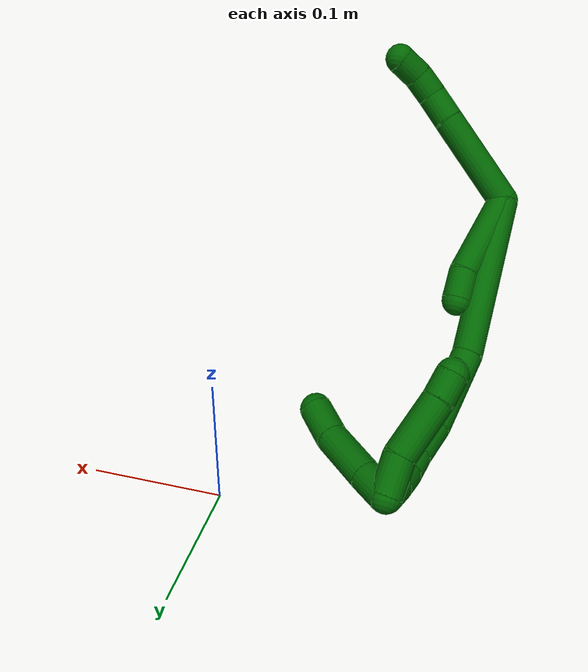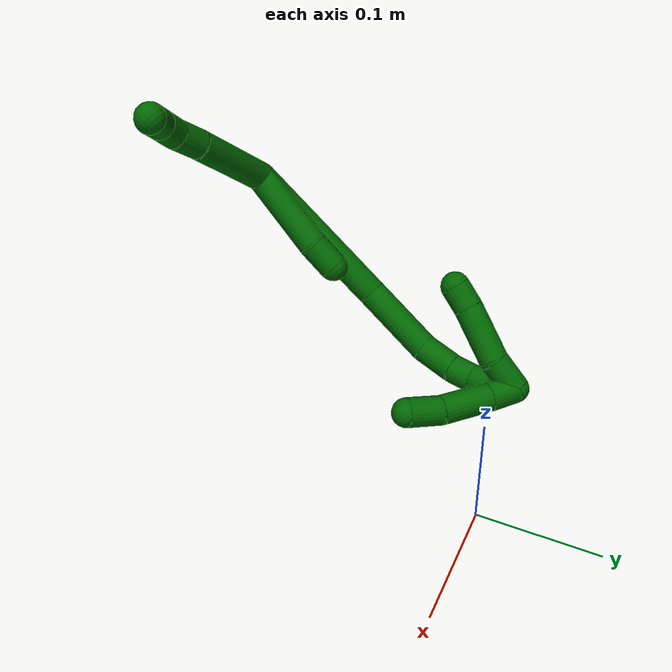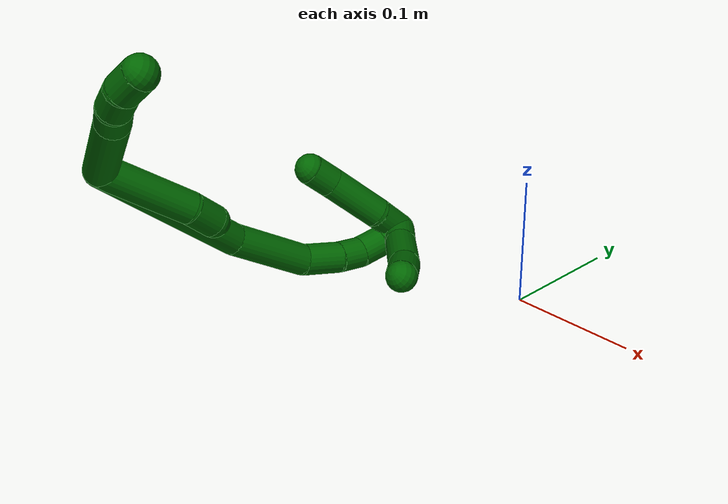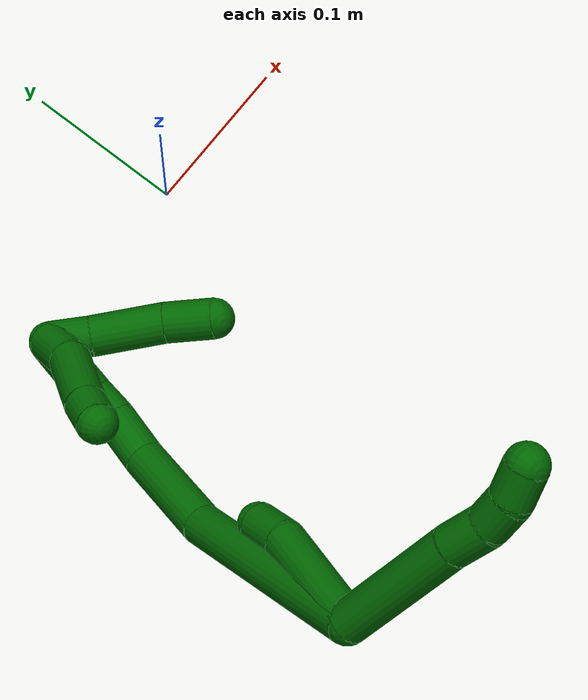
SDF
<sdf version="1.7">
 <world name="default">
  <model name="6">
   <static>0</static>
   <link name="6">
    <collision name="collision-cylinder-e_1_2_8">
     <pose>0.033125 0.000984 0.024829 -0.039609 0.927208 -0.019805</pose>
     <geometry><cylinder><radius>0.0125</radius><length>0.082819</length></cylinder></geometry>
     <surface>
      <friction><ode><mu>1.16</mu><mu2>1.16</mu2><slip1>0</slip1><slip2>0</slip2></ode></friction>
      <contact><ode><kp>1e+06</kp><kd>1</kd><max_vel>0</max_vel><min_depth>0.001</min_depth></ode></contact>
     </surface>
    </collision>
    <visual name="visual-cylinder-e_1_2_8">
     <pose>0.033125 0.000984 0.024829 -0.039609 0.927208 -0.019805</pose>
     <geometry><cylinder><radius>0.0125</radius><length>0.082819</length></cylinder></geometry>
     <material><ambient>0 0.392157 0.003922 1</ambient></material>
    </visual>
    <collision name="collision-cylinder-e_2_8_9">
     <pose>0.075861 0.001257 0.057717 0.088036 0.871081 0.040988</pose>
     <geometry><cylinder><radius>0.0125</radius><length>0.025124</length></cylinder></geometry>
     <surface>
      <friction><ode><mu>1.16</mu><mu2>1.16</mu2><slip1>0</slip1><slip2>0</slip2></ode></friction>
      <contact><ode><kp>1e+06</kp><kd>1</kd><max_vel>0</max_vel><min_depth>0.001</min_depth></ode></contact>
     </surface>
    </collision>
    <visual name="visual-cylinder-e_2_8_9">
     <pose>0.075861 0.001257 0.057717 0.088036 0.871081 0.040988</pose>
     <geometry><cylinder><radius>0.0125</radius><length>0.025124</length></cylinder></geometry>
     <material><ambient>0 0.392157 0.003922 1</ambient></material>
    </visual>
    <collision name="collision-cylinder-e_3_9_10">
     <pose>0.094371 0.002071 0.071065 -0.280764 1.01684 -0.157177</pose>
     <geometry><cylinder><radius>0.0125</radius><length>0.02093</length></cylinder></geometry>
     <surface>
      <friction><ode><mu>1.16</mu><mu2>1.16</mu2><slip1>0</slip1><slip2>0</slip2></ode></friction>
      <contact><ode><kp>1e+06</kp><kd>1</kd><max_vel>0</max_vel><min_depth>0.001</min_depth></ode></contact>
     </surface>
    </collision>
    <visual name="visual-cylinder-e_3_9_10">
     <pose>0.094371 0.002071 0.071065 -0.280764 1.01684 -0.157177</pose>
     <geometry><cylinder><radius>0.0125</radius><length>0.02093</length></cylinder></geometry>
     <material><ambient>0 0.392157 0.003922 1</ambient></material>
    </visual>
    <collision name="collision-cylinder-e_4_10_6">
     <pose>0.113161 0.006196 0.079003 -0.776108 1.21184 -0.552001</pose>
     <geometry><cylinder><radius>0.0125</radius><length>0.021127</length></cylinder></geometry>
     <surface>
      <friction><ode><mu>1.16</mu><mu2>1.16</mu2><slip1>0</slip1><slip2>0</slip2></ode></friction>
      <contact><ode><kp>1e+06</kp><kd>1</kd><max_vel>0</max_vel><min_depth>0.001</min_depth></ode></contact>
     </surface>
    </collision>
    <visual name="visual-cylinder-e_4_10_6">
     <pose>0.113161 0.006196 0.079003 -0.776108 1.21184 -0.552001</pose>
     <geometry><cylinder><radius>0.0125</radius><length>0.021127</length></cylinder></geometry>
     <material><ambient>0 0.392157 0.003922 1</ambient></material>
    </visual>
    <collision name="collision-cylinder-e_1_2_11">
     <pose>0.008241 0.000105 -0.036446 -3.13871 0.222385 -3.11578</pose>
     <geometry><cylinder><radius>0.0125</radius><length>0.074732</length></cylinder></geometry>
     <surface>
      <friction><ode><mu>1.16</mu><mu2>1.16</mu2><slip1>0</slip1><slip2>0</slip2></ode></friction>
      <contact><ode><kp>1e+06</kp><kd>1</kd><max_vel>0</max_vel><min_depth>0.001</min_depth></ode></contact>
     </surface>
    </collision>
    <visual name="visual-cylinder-e_1_2_11">
     <pose>0.008241 0.000105 -0.036446 -3.13871 0.222385 -3.11578</pose>
     <geometry><cylinder><radius>0.0125</radius><length>0.074732</length></cylinder></geometry>
     <material><ambient>0 0.392157 0.003922 1</ambient></material>
    </visual>
    <collision name="collision-cylinder-e_2_11_5">
     <pose>0.016231 0.000327 -0.085522 -3.13232 -0.019945 2.27138</pose>
     <geometry><cylinder><radius>0.0125</radius><length>0.025268</length></cylinder></geometry>
     <surface>
      <friction><ode><mu>1.16</mu><mu2>1.16</mu2><slip1>0</slip1><slip2>0</slip2></ode></friction>
      <contact><ode><kp>1e+06</kp><kd>1</kd><max_vel>0</max_vel><min_depth>0.001</min_depth></ode></contact>
     </surface>
    </collision>
    <visual name="visual-cylinder-e_2_11_5">
     <pose>0.016231 0.000327 -0.085522 -3.13232 -0.019945 2.27138</pose>
     <geometry><cylinder><radius>0.0125</radius><length>0.025268</length></cylinder></geometry>
     <material><ambient>0 0.392157 0.003922 1</ambient></material>
    </visual>
    <collision name="collision-cylinder-e_1_2_12">
     <pose>-0.001508 0.002293 -0.069621 -3.10866 -0.021642 1.16281</pose>
     <geometry><cylinder><radius>0.0125</radius><length>0.139349</length></cylinder></geometry>
     <surface>
      <friction><ode><mu>1.16</mu><mu2>1.16</mu2><slip1>0</slip1><slip2>0</slip2></ode></friction>
      <contact><ode><kp>1e+06</kp><kd>1</kd><max_vel>0</max_vel><min_depth>0.001</min_depth></ode></contact>
     </surface>
    </collision>
    <visual name="visual-cylinder-e_1_2_12">
     <pose>-0.001508 0.002293 -0.069621 -3.10866 -0.021642 1.16281</pose>
     <geometry><cylinder><radius>0.0125</radius><length>0.139349</length></cylinder></geometry>
     <material><ambient>0 0.392157 0.003922 1</ambient></material>
    </visual>
    <collision name="collision-cylinder-e_2_12_13">
     <pose>0.003624 0.008047 -0.17209 -3.03664 0.198377 -2.17033</pose>
     <geometry><cylinder><radius>0.0125</radius><length>0.067382</length></cylinder></geometry>
     <surface>
      <friction><ode><mu>1.16</mu><mu2>1.16</mu2><slip1>0</slip1><slip2>0</slip2></ode></friction>
      <contact><ode><kp>1e+06</kp><kd>1</kd><max_vel>0</max_vel><min_depth>0.001</min_depth></ode></contact>
     </surface>
    </collision>
    <visual name="visual-cylinder-e_2_12_13">
     <pose>0.003624 0.008047 -0.17209 -3.03664 0.198377 -2.17033</pose>
     <geometry><cylinder><radius>0.0125</radius><length>0.067382</length></cylinder></geometry>
     <material><ambient>0 0.392157 0.003922 1</ambient></material>
    </visual>
    <collision name="collision-cylinder-e_3_13_14">
     <pose>0.016553 0.017188 -0.218523 -2.74552 0.403668 -1.59029</pose>
     <geometry><cylinder><radius>0.0125</radius><length>0.032024</length></cylinder></geometry>
     <surface>
      <friction><ode><mu>1.16</mu><mu2>1.16</mu2><slip1>0</slip1><slip2>0</slip2></ode></friction>
      <contact><ode><kp>1e+06</kp><kd>1</kd><max_vel>0</max_vel><min_depth>0.001</min_depth></ode></contact>
     </surface>
    </collision>
    <visual name="visual-cylinder-e_3_13_14">
     <pose>0.016553 0.017188 -0.218523 -2.74552 0.403668 -1.59029</pose>
     <geometry><cylinder><radius>0.0125</radius><length>0.032024</length></cylinder></geometry>
     <material><ambient>0 0.392157 0.003922 1</ambient></material>
    </visual>
    <collision name="collision-cylinder-e_4_14_15">
     <pose>0.026317 0.027879 -0.240385 -2.59725 0.34474 -1.11545</pose>
     <geometry><cylinder><radius>0.0125</radius><length>0.020559</length></cylinder></geometry>
     <surface>
      <friction><ode><mu>1.16</mu><mu2>1.16</mu2><slip1>0</slip1><slip2>0</slip2></ode></friction>
      <contact><ode><kp>1e+06</kp><kd>1</kd><max_vel>0</max_vel><min_depth>0.001</min_depth></ode></contact>
     </surface>
    </collision>
    <visual name="visual-cylinder-e_4_14_15">
     <pose>0.026317 0.027879 -0.240385 -2.59725 0.34474 -1.11545</pose>
     <geometry><cylinder><radius>0.0125</radius><length>0.020559</length></cylinder></geometry>
     <material><ambient>0 0.392157 0.003922 1</ambient></material>
    </visual>
    <collision name="collision-cylinder-e_5_15_16">
     <pose>0.034282 0.039615 -0.25499 -2.32582 0.452649 -0.979214</pose>
     <geometry><cylinder><radius>0.0125</radius><length>0.02054</length></cylinder></geometry>
     <surface>
      <friction><ode><mu>1.16</mu><mu2>1.16</mu2><slip1>0</slip1><slip2>0</slip2></ode></friction>
      <contact><ode><kp>1e+06</kp><kd>1</kd><max_vel>0</max_vel><min_depth>0.001</min_depth></ode></contact>
     </surface>
    </collision>
    <visual name="visual-cylinder-e_5_15_16">
     <pose>0.034282 0.039615 -0.25499 -2.32582 0.452649 -0.979214</pose>
     <geometry><cylinder><radius>0.0125</radius><length>0.02054</length></cylinder></geometry>
     <material><ambient>0 0.392157 0.003922 1</ambient></material>
    </visual>
    <collision name="collision-cylinder-e_6_16_1">
     <pose>0.043481 0.053511 -0.266601 -2.20571 0.486233 -0.91247</pose>
     <geometry><cylinder><radius>0.0125</radius><length>0.020146</length></cylinder></geometry>
     <surface>
      <friction><ode><mu>1.16</mu><mu2>1.16</mu2><slip1>0</slip1><slip2>0</slip2></ode></friction>
      <contact><ode><kp>1e+06</kp><kd>1</kd><max_vel>0</max_vel><min_depth>0.001</min_depth></ode></contact>
     </surface>
    </collision>
    <visual name="visual-cylinder-e_6_16_1">
     <pose>0.043481 0.053511 -0.266601 -2.20571 0.486233 -0.91247</pose>
     <geometry><cylinder><radius>0.0125</radius><length>0.020146</length></cylinder></geometry>
     <material><ambient>0 0.392157 0.003922 1</ambient></material>
    </visual>
    <collision name="collision-cylinder-e_1_1_17">
     <pose>0.054577 0.051442 -0.26636 1.03194 0.535676 0.308849</pose>
     <geometry><cylinder><radius>0.0125</radius><length>0.025036</length></cylinder></geometry>
     <surface>
      <friction><ode><mu>1.16</mu><mu2>1.16</mu2><slip1>0</slip1><slip2>0</slip2></ode></friction>
      <contact><ode><kp>1e+06</kp><kd>1</kd><max_vel>0</max_vel><min_depth>0.001</min_depth></ode></contact>
     </surface>
    </collision>
    <visual name="visual-cylinder-e_1_1_17">
     <pose>0.054577 0.051442 -0.26636 1.03194 0.535676 0.308849</pose>
     <geometry><cylinder><radius>0.0125</radius><length>0.025036</length></cylinder></geometry>
     <material><ambient>0 0.392157 0.003922 1</ambient></material>
    </visual>
    <collision name="collision-cylinder-e_2_17_18">
     <pose>0.073487 0.027155 -0.249792 0.937692 0.590809 0.305866</pose>
     <geometry><cylinder><radius>0.0125</radius><length>0.044952</length></cylinder></geometry>
     <surface>
      <friction><ode><mu>1.16</mu><mu2>1.16</mu2><slip1>0</slip1><slip2>0</slip2></ode></friction>
      <contact><ode><kp>1e+06</kp><kd>1</kd><max_vel>0</max_vel><min_depth>0.001</min_depth></ode></contact>
     </surface>
    </collision>
    <visual name="visual-cylinder-e_2_17_18">
     <pose>0.073487 0.027155 -0.249792 0.937692 0.590809 0.305866</pose>
     <geometry><cylinder><radius>0.0125</radius><length>0.044952</length></cylinder></geometry>
     <material><ambient>0 0.392157 0.003922 1</ambient></material>
    </visual>
    <collision name="collision-cylinder-e_3_18_4">
     <pose>0.093267 0.003179 -0.229116 0.74746 0.505023 0.201683</pose>
     <geometry><cylinder><radius>0.0125</radius><length>0.030013</length></cylinder></geometry>
     <surface>
      <friction><ode><mu>1.16</mu><mu2>1.16</mu2><slip1>0</slip1><slip2>0</slip2></ode></friction>
      <contact><ode><kp>1e+06</kp><kd>1</kd><max_vel>0</max_vel><min_depth>0.001</min_depth></ode></contact>
     </surface>
    </collision>
    <visual name="visual-cylinder-e_3_18_4">
     <pose>0.093267 0.003179 -0.229116 0.74746 0.505023 0.201683</pose>
     <geometry><cylinder><radius>0.0125</radius><length>0.030013</length></cylinder></geometry>
     <material><ambient>0 0.392157 0.003922 1</ambient></material>
    </visual>
    <collision name="collision-cylinder-e_1_1_19">
     <pose>0.04767 0.061758 -0.256982 -0.072138 -0.03468 0.001252</pose>
     <geometry><cylinder><radius>0.0125</radius><length>0.029899</length></cylinder></geometry>
     <surface>
      <friction><ode><mu>1.16</mu><mu2>1.16</mu2><slip1>0</slip1><slip2>0</slip2></ode></friction>
      <contact><ode><kp>1e+06</kp><kd>1</kd><max_vel>0</max_vel><min_depth>0.001</min_depth></ode></contact>
     </surface>
    </collision>
    <visual name="visual-cylinder-e_1_1_19">
     <pose>0.04767 0.061758 -0.256982 -0.072138 -0.03468 0.001252</pose>
     <geometry><cylinder><radius>0.0125</radius><length>0.029899</length></cylinder></geometry>
     <material><ambient>0 0.392157 0.003922 1</ambient></material>
    </visual>
    <collision name="collision-cylinder-e_2_19_20">
     <pose>0.040326 0.067488 -0.219246 -0.201058 -0.284942 0.028936</pose>
     <geometry><cylinder><radius>0.0125</radius><length>0.048564</length></cylinder></geometry>
     <surface>
      <friction><ode><mu>1.16</mu><mu2>1.16</mu2><slip1>0</slip1><slip2>0</slip2></ode></friction>
      <contact><ode><kp>1e+06</kp><kd>1</kd><max_vel>0</max_vel><min_depth>0.001</min_depth></ode></contact>
     </surface>
    </collision>
    <visual name="visual-cylinder-e_2_19_20">
     <pose>0.040326 0.067488 -0.219246 -0.201058 -0.284942 0.028936</pose>
     <geometry><cylinder><radius>0.0125</radius><length>0.048564</length></cylinder></geometry>
     <material><ambient>0 0.392157 0.003922 1</ambient></material>
    </visual>
    <collision name="collision-cylinder-e_3_20_3">
     <pose>0.031364 0.073413 -0.185935 -0.120679 -0.19966 0.012102</pose>
     <geometry><cylinder><radius>0.0125</radius><length>0.021537</length></cylinder></geometry>
     <surface>
      <friction><ode><mu>1.16</mu><mu2>1.16</mu2><slip1>0</slip1><slip2>0</slip2></ode></friction>
      <contact><ode><kp>1e+06</kp><kd>1</kd><max_vel>0</max_vel><min_depth>0.001</min_depth></ode></contact>
     </surface>
    </collision>
    <visual name="visual-cylinder-e_3_20_3">
     <pose>0.031364 0.073413 -0.185935 -0.120679 -0.19966 0.012102</pose>
     <geometry><cylinder><radius>0.0125</radius><length>0.021537</length></cylinder></geometry>
     <material><ambient>0 0.392157 0.003922 1</ambient></material>
    </visual>
    <collision name="collision-sphere-3">
     <pose>0.029228 0.074683 -0.175458 0 -0 0</pose>
     <geometry><sphere><radius>0.0125</radius></sphere></geometry>
     <surface>
      <friction><ode><mu>1.16</mu><mu2>1.16</mu2><slip1>0</slip1><slip2>0</slip2></ode></friction>
      <contact><ode><kp>1e+06</kp><kd>1</kd><max_vel>0</max_vel><min_depth>0.001</min_depth></ode></contact>
     </surface>
    </collision>
    <visual name="visual-sphere-3">
     <pose>0.029228 0.074683 -0.175458 0 -0 0</pose>
     <geometry><sphere><radius>0.0125</radius></sphere></geometry>
     <material><ambient>0 0.392157 0.003922 1</ambient></material>
    </visual>
    <collision name="collision-sphere-20">
     <pose>0.0335 0.072142 -0.196413 0 -0 0</pose>
     <geometry><sphere><radius>0.0125</radius></sphere></geometry>
     <surface>
      <friction><ode><mu>1.16</mu><mu2>1.16</mu2><slip1>0</slip1><slip2>0</slip2></ode></friction>
      <contact><ode><kp>1e+06</kp><kd>1</kd><max_vel>0</max_vel><min_depth>0.001</min_depth></ode></contact>
     </surface>
    </collision>
    <visual name="visual-sphere-20">
     <pose>0.0335 0.072142 -0.196413 0 -0 0</pose>
     <geometry><sphere><radius>0.0125</radius></sphere></geometry>
     <material><ambient>0 0.392157 0.003922 1</ambient></material>
    </visual>
    <collision name="collision-sphere-19">
     <pose>0.047151 0.062835 -0.24208 0 -0 0</pose>
     <geometry><sphere><radius>0.0125</radius></sphere></geometry>
     <surface>
      <friction><ode><mu>1.16</mu><mu2>1.16</mu2><slip1>0</slip1><slip2>0</slip2></ode></friction>
      <contact><ode><kp>1e+06</kp><kd>1</kd><max_vel>0</max_vel><min_depth>0.001</min_depth></ode></contact>
     </surface>
    </collision>
    <visual name="visual-sphere-19">
     <pose>0.047151 0.062835 -0.24208 0 -0 0</pose>
     <geometry><sphere><radius>0.0125</radius></sphere></geometry>
     <material><ambient>0 0.392157 0.003922 1</ambient></material>
    </visual>
    <collision name="collision-sphere-11">
     <pose>0.016483 0.00021 -0.072891 0 -0 0</pose>
     <geometry><sphere><radius>0.0125</radius></sphere></geometry>
     <surface>
      <friction><ode><mu>1.16</mu><mu2>1.16</mu2><slip1>0</slip1><slip2>0</slip2></ode></friction>
      <contact><ode><kp>1e+06</kp><kd>1</kd><max_vel>0</max_vel><min_depth>0.001</min_depth></ode></contact>
     </surface>
    </collision>
    <visual name="visual-sphere-11">
     <pose>0.016483 0.00021 -0.072891 0 -0 0</pose>
     <geometry><sphere><radius>0.0125</radius></sphere></geometry>
     <material><ambient>0 0.392157 0.003922 1</ambient></material>
    </visual>
    <collision name="collision-sphere-6">
     <pose>0.123052 0.008795 0.081651 0 -0 0</pose>
     <geometry><sphere><radius>0.0125</radius></sphere></geometry>
     <surface>
      <friction><ode><mu>1.16</mu><mu2>1.16</mu2><slip1>0</slip1><slip2>0</slip2></ode></friction>
      <contact><ode><kp>1e+06</kp><kd>1</kd><max_vel>0</max_vel><min_depth>0.001</min_depth></ode></contact>
     </surface>
    </collision>
    <visual name="visual-sphere-6">
     <pose>0.123052 0.008795 0.081651 0 -0 0</pose>
     <geometry><sphere><radius>0.0125</radius></sphere></geometry>
     <material><ambient>0 0.392157 0.003922 1</ambient></material>
    </visual>
    <collision name="collision-sphere-10">
     <pose>0.103271 0.003596 0.076355 0 -0 0</pose>
     <geometry><sphere><radius>0.0125</radius></sphere></geometry>
     <surface>
      <friction><ode><mu>1.16</mu><mu2>1.16</mu2><slip1>0</slip1><slip2>0</slip2></ode></friction>
      <contact><ode><kp>1e+06</kp><kd>1</kd><max_vel>0</max_vel><min_depth>0.001</min_depth></ode></contact>
     </surface>
    </collision>
    <visual name="visual-sphere-10">
     <pose>0.103271 0.003596 0.076355 0 -0 0</pose>
     <geometry><sphere><radius>0.0125</radius></sphere></geometry>
     <material><ambient>0 0.392157 0.003922 1</ambient></material>
    </visual>
    <collision name="collision-sphere-9">
     <pose>0.085472 0.000545 0.065776 0 -0 0</pose>
     <geometry><sphere><radius>0.0125</radius></sphere></geometry>
     <surface>
      <friction><ode><mu>1.16</mu><mu2>1.16</mu2><slip1>0</slip1><slip2>0</slip2></ode></friction>
      <contact><ode><kp>1e+06</kp><kd>1</kd><max_vel>0</max_vel><min_depth>0.001</min_depth></ode></contact>
     </surface>
    </collision>
    <visual name="visual-sphere-9">
     <pose>0.085472 0.000545 0.065776 0 -0 0</pose>
     <geometry><sphere><radius>0.0125</radius></sphere></geometry>
     <material><ambient>0 0.392157 0.003922 1</ambient></material>
    </visual>
    <collision name="collision-sphere-2">
     <geometry><sphere><radius>0.0125</radius></sphere></geometry>
     <surface>
      <friction><ode><mu>1.16</mu><mu2>1.16</mu2><slip1>0</slip1><slip2>0</slip2></ode></friction>
      <contact><ode><kp>1e+06</kp><kd>1</kd><max_vel>0</max_vel><min_depth>0.001</min_depth></ode></contact>
     </surface>
    </collision>
    <visual name="visual-sphere-2">
     <geometry><sphere><radius>0.0125</radius></sphere></geometry>
     <material><ambient>0 0.392157 0.003922 1</ambient></material>
    </visual>
    <collision name="collision-sphere-8">
     <pose>0.066251 0.001968 0.049658 0 -0 0</pose>
     <geometry><sphere><radius>0.0125</radius></sphere></geometry>
     <surface>
      <friction><ode><mu>1.16</mu><mu2>1.16</mu2><slip1>0</slip1><slip2>0</slip2></ode></friction>
      <contact><ode><kp>1e+06</kp><kd>1</kd><max_vel>0</max_vel><min_depth>0.001</min_depth></ode></contact>
     </surface>
    </collision>
    <visual name="visual-sphere-8">
     <pose>0.066251 0.001968 0.049658 0 -0 0</pose>
     <geometry><sphere><radius>0.0125</radius></sphere></geometry>
     <material><ambient>0 0.392157 0.003922 1</ambient></material>
    </visual>
    <collision name="collision-sphere-5">
     <pose>0.015979 0.000444 -0.098153 0 -0 0</pose>
     <geometry><sphere><radius>0.0125</radius></sphere></geometry>
     <surface>
      <friction><ode><mu>1.16</mu><mu2>1.16</mu2><slip1>0</slip1><slip2>0</slip2></ode></friction>
      <contact><ode><kp>1e+06</kp><kd>1</kd><max_vel>0</max_vel><min_depth>0.001</min_depth></ode></contact>
     </surface>
    </collision>
    <visual name="visual-sphere-5">
     <pose>0.015979 0.000444 -0.098153 0 -0 0</pose>
     <geometry><sphere><radius>0.0125</radius></sphere></geometry>
     <material><ambient>0 0.392157 0.003922 1</ambient></material>
    </visual>
    <collision name="collision-sphere-12">
     <pose>-0.003015 0.004587 -0.139241 0 -0 0</pose>
     <geometry><sphere><radius>0.0125</radius></sphere></geometry>
     <surface>
      <friction><ode><mu>1.16</mu><mu2>1.16</mu2><slip1>0</slip1><slip2>0</slip2></ode></friction>
      <contact><ode><kp>1e+06</kp><kd>1</kd><max_vel>0</max_vel><min_depth>0.001</min_depth></ode></contact>
     </surface>
    </collision>
    <visual name="visual-sphere-12">
     <pose>-0.003015 0.004587 -0.139241 0 -0 0</pose>
     <geometry><sphere><radius>0.0125</radius></sphere></geometry>
     <material><ambient>0 0.392157 0.003922 1</ambient></material>
    </visual>
    <collision name="collision-sphere-13">
     <pose>0.010264 0.011507 -0.204938 0 -0 0</pose>
     <geometry><sphere><radius>0.0125</radius></sphere></geometry>
     <surface>
      <friction><ode><mu>1.16</mu><mu2>1.16</mu2><slip1>0</slip1><slip2>0</slip2></ode></friction>
      <contact><ode><kp>1e+06</kp><kd>1</kd><max_vel>0</max_vel><min_depth>0.001</min_depth></ode></contact>
     </surface>
    </collision>
    <visual name="visual-sphere-13">
     <pose>0.010264 0.011507 -0.204938 0 -0 0</pose>
     <geometry><sphere><radius>0.0125</radius></sphere></geometry>
     <material><ambient>0 0.392157 0.003922 1</ambient></material>
    </visual>
    <collision name="collision-sphere-14">
     <pose>0.022843 0.022869 -0.232108 0 -0 0</pose>
     <geometry><sphere><radius>0.0125</radius></sphere></geometry>
     <surface>
      <friction><ode><mu>1.16</mu><mu2>1.16</mu2><slip1>0</slip1><slip2>0</slip2></ode></friction>
      <contact><ode><kp>1e+06</kp><kd>1</kd><max_vel>0</max_vel><min_depth>0.001</min_depth></ode></contact>
     </surface>
    </collision>
    <visual name="visual-sphere-14">
     <pose>0.022843 0.022869 -0.232108 0 -0 0</pose>
     <geometry><sphere><radius>0.0125</radius></sphere></geometry>
     <material><ambient>0 0.392157 0.003922 1</ambient></material>
    </visual>
    <collision name="collision-sphere-15">
     <pose>0.029791 0.032889 -0.248661 0 -0 0</pose>
     <geometry><sphere><radius>0.0125</radius></sphere></geometry>
     <surface>
      <friction><ode><mu>1.16</mu><mu2>1.16</mu2><slip1>0</slip1><slip2>0</slip2></ode></friction>
      <contact><ode><kp>1e+06</kp><kd>1</kd><max_vel>0</max_vel><min_depth>0.001</min_depth></ode></contact>
     </surface>
    </collision>
    <visual name="visual-sphere-15">
     <pose>0.029791 0.032889 -0.248661 0 -0 0</pose>
     <geometry><sphere><radius>0.0125</radius></sphere></geometry>
     <material><ambient>0 0.392157 0.003922 1</ambient></material>
    </visual>
    <collision name="collision-sphere-16">
     <pose>0.038774 0.046341 -0.26132 0 -0 0</pose>
     <geometry><sphere><radius>0.0125</radius></sphere></geometry>
     <surface>
      <friction><ode><mu>1.16</mu><mu2>1.16</mu2><slip1>0</slip1><slip2>0</slip2></ode></friction>
      <contact><ode><kp>1e+06</kp><kd>1</kd><max_vel>0</max_vel><min_depth>0.001</min_depth></ode></contact>
     </surface>
    </collision>
    <visual name="visual-sphere-16">
     <pose>0.038774 0.046341 -0.26132 0 -0 0</pose>
     <geometry><sphere><radius>0.0125</radius></sphere></geometry>
     <material><ambient>0 0.392157 0.003922 1</ambient></material>
    </visual>
    <collision name="collision-sphere-1">
     <pose>0.048188 0.060681 -0.271883 0 -0 0</pose>
     <geometry><sphere><radius>0.0125</radius></sphere></geometry>
     <surface>
      <friction><ode><mu>1.16</mu><mu2>1.16</mu2><slip1>0</slip1><slip2>0</slip2></ode></friction>
      <contact><ode><kp>1e+06</kp><kd>1</kd><max_vel>0</max_vel><min_depth>0.001</min_depth></ode></contact>
     </surface>
    </collision>
    <visual name="visual-sphere-1">
     <pose>0.048188 0.060681 -0.271883 0 -0 0</pose>
     <geometry><sphere><radius>0.0125</radius></sphere></geometry>
     <material><ambient>0 0.392157 0.003922 1</ambient></material>
    </visual>
    <collision name="collision-sphere-18">
     <pose>0.086006 0.012106 -0.238748 0 -0 0</pose>
     <geometry><sphere><radius>0.0125</radius></sphere></geometry>
     <surface>
      <friction><ode><mu>1.16</mu><mu2>1.16</mu2><slip1>0</slip1><slip2>0</slip2></ode></friction>
      <contact><ode><kp>1e+06</kp><kd>1</kd><max_vel>0</max_vel><min_depth>0.001</min_depth></ode></contact>
     </surface>
    </collision>
    <visual name="visual-sphere-18">
     <pose>0.086006 0.012106 -0.238748 0 -0 0</pose>
     <geometry><sphere><radius>0.0125</radius></sphere></geometry>
     <material><ambient>0 0.392157 0.003922 1</ambient></material>
    </visual>
    <collision name="collision-sphere-17">
     <pose>0.060967 0.042203 -0.260836 0 -0 0</pose>
     <geometry><sphere><radius>0.0125</radius></sphere></geometry>
     <surface>
      <friction><ode><mu>1.16</mu><mu2>1.16</mu2><slip1>0</slip1><slip2>0</slip2></ode></friction>
      <contact><ode><kp>1e+06</kp><kd>1</kd><max_vel>0</max_vel><min_depth>0.001</min_depth></ode></contact>
     </surface>
    </collision>
    <visual name="visual-sphere-17">
     <pose>0.060967 0.042203 -0.260836 0 -0 0</pose>
     <geometry><sphere><radius>0.0125</radius></sphere></geometry>
     <material><ambient>0 0.392157 0.003922 1</ambient></material>
    </visual>
    <collision name="collision-sphere-4">
     <pose>0.100527 -0.005749 -0.219484 0 -0 0</pose>
     <geometry><sphere><radius>0.0125</radius></sphere></geometry>
     <surface>
      <friction><ode><mu>1.16</mu><mu2>1.16</mu2><slip1>0</slip1><slip2>0</slip2></ode></friction>
      <contact><ode><kp>1e+06</kp><kd>1</kd><max_vel>0</max_vel><min_depth>0.001</min_depth></ode></contact>
     </surface>
    </collision>
    <visual name="visual-sphere-4">
     <pose>0.100527 -0.005749 -0.219484 0 -0 0</pose>
     <geometry><sphere><radius>0.0125</radius></sphere></geometry>
     <material><ambient>0 0.392157 0.003922 1</ambient></material>
    </visual>
    <inertial>
     <pose>0.03234 0.017986 -0.118902 0 -0 0</pose>
     <mass>0.75</mass>
     <inertia>
      <ixx>0.000304</ixx>
      <ixy>0</ixy>
      <ixz>0</ixz>
      <iyy>0.000234</iyy>
      <iyz>0</iyz>
      <izz>-8.2e-05</izz>
     </inertia>
    </inertial>
   </link>
   <pose>-0.165566 -0.262672 0.139733 0.796654 -0.383649 0.226835</pose>
  </model>
 </world>
</sdf>
